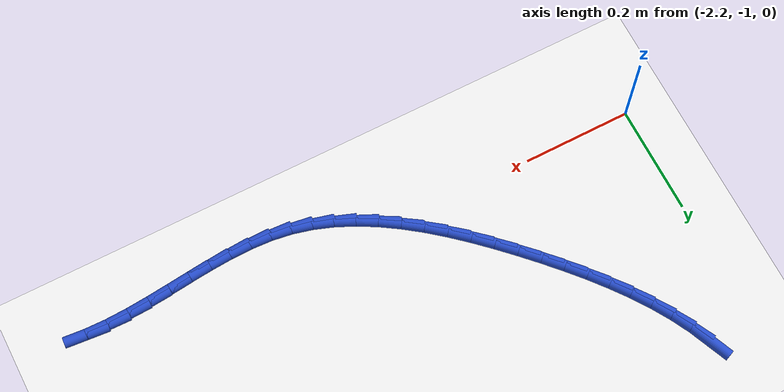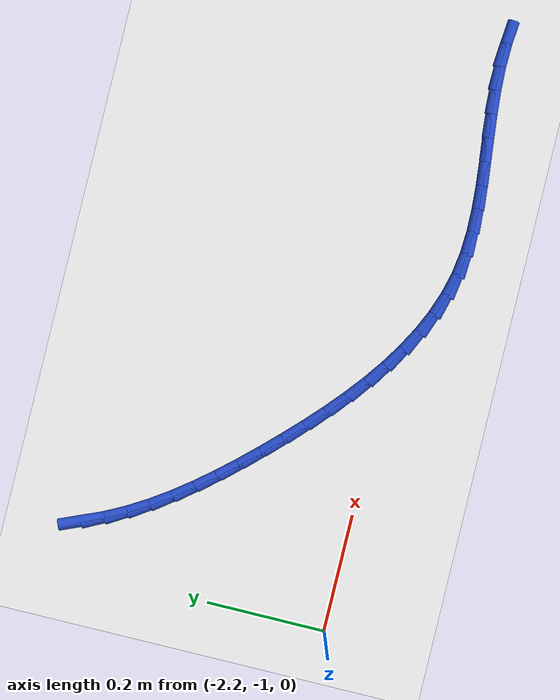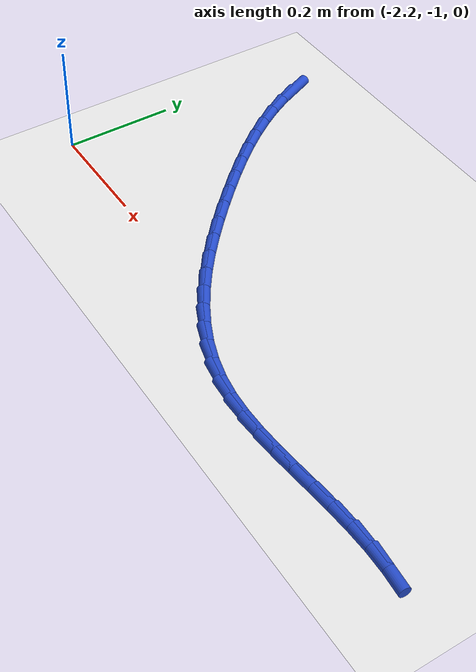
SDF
<sdf version="1.6">
 <world name="default">
  <model name="ground_plane">
   <static>1</static>
   <link name="link">
    <collision name="collision">
     <geometry><plane><normal>0 0 1</normal><size>100 100</size></plane></geometry>
     <surface><friction><ode><mu>100</mu><mu2>50</mu2></ode></friction></surface>
    </collision>
    <visual name="visual">
     <cast_shadows>0</cast_shadows>
     <geometry><plane><normal>0 0 1</normal><size>100 100</size></plane></geometry>
     <material>
      <script><uri>file://media/materials/scripts/gazebo.material</uri><name>Gazebo/WhiteGlow</name></script>
     </material>
    </visual>
   </link>
  </model>
  <model name="line">
   <link name="link_104">
    <pose>-2.114832103256443 -0.5647005654742792 0.01 0 1.57 -1.1683854319441171</pose>
    <collision name="collision">
     <geometry><cylinder><radius>0.01</radius><length>0.08</length></cylinder></geometry>
    </collision>
    <visual name="visual">
     <material>
      <script><name>Gazebo/Blue</name><uri>file://media/materials/scripts/gazebo.material</uri></script>
     </material>
     <geometry><cylinder><radius>0.01</radius><length>0.08</length></cylinder></geometry>
    </visual>
   </link>
   <link name="link_105">
    <pose>-2.0999432105239815 -0.5996807447979458 0.01 0 1.57 -1.093050343745922</pose>
    <collision name="collision">
     <geometry><cylinder><radius>0.01</radius><length>0.08</length></cylinder></geometry>
    </collision>
    <visual name="visual">
     <material>
      <script><name>Gazebo/Blue</name><uri>file://media/materials/scripts/gazebo.material</uri></script>
     </material>
     <geometry><cylinder><radius>0.01</radius><length>0.08</length></cylinder></geometry>
    </visual>
   </link>
   <link name="link_106">
    <pose>-2.082138962742189 -0.6340685249625383 0.01 0 1.57 -1.0276154406287026</pose>
    <collision name="collision">
     <geometry><cylinder><radius>0.01</radius><length>0.08</length></cylinder></geometry>
    </collision>
    <visual name="visual">
     <material>
      <script><name>Gazebo/Blue</name><uri>file://media/materials/scripts/gazebo.material</uri></script>
     </material>
     <geometry><cylinder><radius>0.01</radius><length>0.08</length></cylinder></geometry>
    </visual>
   </link>
   <link name="link_107">
    <pose>-2.061730243589506 -0.6678711299347864 0.01 0 1.57 -0.9713685978101169</pose>
    <collision name="collision">
     <geometry><cylinder><radius>0.01</radius><length>0.08</length></cylinder></geometry>
    </collision>
    <visual name="visual">
     <material>
      <script><name>Gazebo/Blue</name><uri>file://media/materials/scripts/gazebo.material</uri></script>
     </material>
     <geometry><cylinder><radius>0.01</radius><length>0.08</length></cylinder></geometry>
    </visual>
   </link>
   <link name="link_108">
    <pose>-2.039027936744374 -0.70109578368142 0.01 0 1.57 -0.9234927192764404</pose>
    <collision name="collision">
     <geometry><cylinder><radius>0.01</radius><length>0.08</length></cylinder></geometry>
    </collision>
    <visual name="visual">
     <material>
      <script><name>Gazebo/Blue</name><uri>file://media/materials/scripts/gazebo.material</uri></script>
     </material>
     <geometry><cylinder><radius>0.01</radius><length>0.08</length></cylinder></geometry>
    </visual>
   </link>
   <link name="link_109">
    <pose>-2.0143429258852343 -0.7337497101691696 0.01 0 1.57 -0.8831838583922672</pose>
    <collision name="collision">
     <geometry><cylinder><radius>0.01</radius><length>0.08</length></cylinder></geometry>
    </collision>
    <visual name="visual">
     <material>
      <script><name>Gazebo/Blue</name><uri>file://media/materials/scripts/gazebo.material</uri></script>
     </material>
     <geometry><cylinder><radius>0.01</radius><length>0.08</length></cylinder></geometry>
    </visual>
   </link>
   <link name="link_110">
    <pose>-1.987986094690529 -0.7658401333647638 0.01 0 1.57 -0.8497186471484238</pose>
    <collision name="collision">
     <geometry><cylinder><radius>0.01</radius><length>0.08</length></cylinder></geometry>
    </collision>
    <visual name="visual">
     <material>
      <script><name>Gazebo/Blue</name><uri>file://media/materials/scripts/gazebo.material</uri></script>
     </material>
     <geometry><cylinder><radius>0.01</radius><length>0.08</length></cylinder></geometry>
    </visual>
   </link>
   <link name="link_111">
    <pose>-1.9602683268386982 -0.7973742772349329 0.01 0 1.57 -0.8224884215368236</pose>
    <collision name="collision">
     <geometry><cylinder><radius>0.01</radius><length>0.08</length></cylinder></geometry>
    </collision>
    <visual name="visual">
     <material>
      <script><name>Gazebo/Blue</name><uri>file://media/materials/scripts/gazebo.material</uri></script>
     </material>
     <geometry><cylinder><radius>0.01</radius><length>0.08</length></cylinder></geometry>
    </visual>
   </link>
   <link name="link_112">
    <pose>-1.931500506008184 -0.8283593657464069 0.01 0 1.57 -0.8009283346623199</pose>
    <collision name="collision">
     <geometry><cylinder><radius>0.01</radius><length>0.08</length></cylinder></geometry>
    </collision>
    <visual name="visual">
     <material>
      <script><name>Gazebo/Blue</name><uri>file://media/materials/scripts/gazebo.material</uri></script>
     </material>
     <geometry><cylinder><radius>0.01</radius><length>0.08</length></cylinder></geometry>
    </visual>
   </link>
   <link name="link_113">
    <pose>-1.9019908758463255 -0.8588001103543619 0.01 0 1.57 -0.7803278999452763</pose>
    <collision name="collision">
     <geometry><cylinder><radius>0.01</radius><length>0.08</length></cylinder></geometry>
    </collision>
    <visual name="visual">
     <material>
      <script><name>Gazebo/Blue</name><uri>file://media/materials/scripts/gazebo.material</uri></script>
     </material>
     <geometry><cylinder><radius>0.01</radius><length>0.08</length></cylinder></geometry>
    </visual>
   </link>
   <link name="link_114">
    <pose>-1.8719137565352213 -0.8885737678587678 0.01 0 1.57 -0.7540231281532149</pose>
    <collision name="collision">
     <geometry><cylinder><radius>0.01</radius><length>0.08</length></cylinder></geometry>
    </collision>
    <visual name="visual">
     <material>
      <script><name>Gazebo/Blue</name><uri>file://media/materials/scripts/gazebo.material</uri></script>
     </material>
     <geometry><cylinder><radius>0.01</radius><length>0.08</length></cylinder></geometry>
    </visual>
   </link>
   <link name="link_115">
    <pose>-1.841248857562832 -0.9173723845076189 0.01 0 1.57 -0.7210666873207242</pose>
    <collision name="collision">
     <geometry><cylinder><radius>0.01</radius><length>0.08</length></cylinder></geometry>
    </collision>
    <visual name="visual">
     <material>
      <script><name>Gazebo/Blue</name><uri>file://media/materials/scripts/gazebo.material</uri></script>
     </material>
     <geometry><cylinder><radius>0.01</radius><length>0.08</length></cylinder></geometry>
    </visual>
   </link>
   <link name="link_116">
    <pose>-1.8099605769800946 -0.9448734346893473 0.01 0 1.57 -0.6808782692776548</pose>
    <collision name="collision">
     <geometry><cylinder><radius>0.01</radius><length>0.08</length></cylinder></geometry>
    </collision>
    <visual name="visual">
     <material>
      <script><name>Gazebo/Blue</name><uri>file://media/materials/scripts/gazebo.material</uri></script>
     </material>
     <geometry><cylinder><radius>0.01</radius><length>0.08</length></cylinder></geometry>
    </visual>
   </link>
   <link name="link_117">
    <pose>-1.7780133128379403 -0.9707543927923866 0.01 0 1.57 -0.6327684379569362</pose>
    <collision name="collision">
     <geometry><cylinder><radius>0.01</radius><length>0.08</length></cylinder></geometry>
    </collision>
    <visual name="visual">
     <material>
      <script><name>Gazebo/Blue</name><uri>file://media/materials/scripts/gazebo.material</uri></script>
     </material>
     <geometry><cylinder><radius>0.01</radius><length>0.08</length></cylinder></geometry>
    </visual>
   </link>
   <link name="link_118">
    <pose>-1.7453714631873047 -0.9946927332051708 0.01 0 1.57 -0.5759827393561124</pose>
    <collision name="collision">
     <geometry><cylinder><radius>0.01</radius><length>0.08</length></cylinder></geometry>
    </collision>
    <visual name="visual">
     <material>
      <script><name>Gazebo/Blue</name><uri>file://media/materials/scripts/gazebo.material</uri></script>
     </material>
     <geometry><cylinder><radius>0.01</radius><length>0.08</length></cylinder></geometry>
    </visual>
   </link>
   <link name="link_119">
    <pose>-1.7119994260791198 -1.016365930316133 0.01 0 1.57 -0.5097821504637767</pose>
    <collision name="collision">
     <geometry><cylinder><radius>0.01</radius><length>0.08</length></cylinder></geometry>
    </collision>
    <visual name="visual">
     <material>
      <script><name>Gazebo/Blue</name><uri>file://media/materials/scripts/gazebo.material</uri></script>
     </material>
     <geometry><cylinder><radius>0.01</radius><length>0.08</length></cylinder></geometry>
    </visual>
   </link>
   <link name="link_120">
    <pose>-1.6778615995643196 -1.0354514585137071 0.01 0 1.57 -0.4335760592934725</pose>
    <collision name="collision">
     <geometry><cylinder><radius>0.01</radius><length>0.08</length></cylinder></geometry>
    </collision>
    <visual name="visual">
     <material>
      <script><name>Gazebo/Blue</name><uri>file://media/materials/scripts/gazebo.material</uri></script>
     </material>
     <geometry><cylinder><radius>0.01</radius><length>0.08</length></cylinder></geometry>
    </visual>
   </link>
   <link name="link_121">
    <pose>-1.6429223816938388 -1.0516267921863258 0.01 0 1.57 -0.3471180042016823</pose>
    <collision name="collision">
     <geometry><cylinder><radius>0.01</radius><length>0.08</length></cylinder></geometry>
    </collision>
    <visual name="visual">
     <material>
      <script><name>Gazebo/Blue</name><uri>file://media/materials/scripts/gazebo.material</uri></script>
     </material>
     <geometry><cylinder><radius>0.01</radius><length>0.08</length></cylinder></geometry>
    </visual>
   </link>
   <link name="link_122">
    <pose>-1.6071461705186114 -1.0645694057224233 0.01 0 1.57 -0.2507527350497579</pose>
    <collision name="collision">
     <geometry><cylinder><radius>0.01</radius><length>0.08</length></cylinder></geometry>
    </collision>
    <visual name="visual">
     <material>
      <script><name>Gazebo/Blue</name><uri>file://media/materials/scripts/gazebo.material</uri></script>
     </material>
     <geometry><cylinder><radius>0.01</radius><length>0.08</length></cylinder></geometry>
    </visual>
   </link>
   <link name="link_123">
    <pose>-1.5704973640895696 -1.0739567735104323 0.01 0 1.57 -0.14706833978597836</pose>
    <collision name="collision">
     <geometry><cylinder><radius>0.01</radius><length>0.08</length></cylinder></geometry>
    </collision>
    <visual name="visual">
     <material>
      <script><name>Gazebo/Blue</name><uri>file://media/materials/scripts/gazebo.material</uri></script>
     </material>
     <geometry><cylinder><radius>0.01</radius><length>0.08</length></cylinder></geometry>
    </visual>
   </link>
   <link name="link_124">
    <pose>-1.5329499223959695 -1.079518973151639 0.01 0 1.57 -0.054123760241607435</pose>
    <collision name="collision">
     <geometry><cylinder><radius>0.01</radius><length>0.08</length></cylinder></geometry>
    </collision>
    <visual name="visual">
     <material>
      <script><name>Gazebo/Blue</name><uri>file://media/materials/scripts/gazebo.material</uri></script>
     </material>
     <geometry><cylinder><radius>0.01</radius><length>0.08</length></cylinder></geometry>
    </visual>
   </link>
   <link name="link_125">
    <pose>-1.4945888995399288 -1.0815972457027498 0.01 0 1.57 0.01717709180044949</pose>
    <collision name="collision">
     <geometry><cylinder><radius>0.01</radius><length>0.08</length></cylinder></geometry>
    </collision>
    <visual name="visual">
     <material>
      <script><name>Gazebo/Blue</name><uri>file://media/materials/scripts/gazebo.material</uri></script>
     </material>
     <geometry><cylinder><radius>0.01</radius><length>0.08</length></cylinder></geometry>
    </visual>
   </link>
   <link name="link_126">
    <pose>-1.455570993141914 -1.080926965618792 0.01 0 1.57 0.06763722626959455</pose>
    <collision name="collision">
     <geometry><cylinder><radius>0.01</radius><length>0.08</length></cylinder></geometry>
    </collision>
    <visual name="visual">
     <material>
      <script><name>Gazebo/Blue</name><uri>file://media/materials/scripts/gazebo.material</uri></script>
     </material>
     <geometry><cylinder><radius>0.01</radius><length>0.08</length></cylinder></geometry>
    </visual>
   </link>
   <link name="link_127">
    <pose>-1.4160540935293173 -1.0782500688085408 0.01 0 1.57 0.09857001321003085</pose>
    <collision name="collision">
     <geometry><cylinder><radius>0.01</radius><length>0.08</length></cylinder></geometry>
    </collision>
    <visual name="visual">
     <material>
      <script><name>Gazebo/Blue</name><uri>file://media/materials/scripts/gazebo.material</uri></script>
     </material>
     <geometry><cylinder><radius>0.01</radius><length>0.08</length></cylinder></geometry>
    </visual>
   </link>
   <link name="link_128">
    <pose>-1.3761960910295272 -1.074308491180769 0.01 0 1.57 0.11103461825785486</pose>
    <collision name="collision">
     <geometry><cylinder><radius>0.01</radius><length>0.08</length></cylinder></geometry>
    </collision>
    <visual name="visual">
     <material>
      <script><name>Gazebo/Blue</name><uri>file://media/materials/scripts/gazebo.material</uri></script>
     </material>
     <geometry><cylinder><radius>0.01</radius><length>0.08</length></cylinder></geometry>
    </visual>
   </link>
   <link name="link_129">
    <pose>-1.3361548759699347 -1.0698441686442521 0.01 0 1.57 0.10555822678696064</pose>
    <collision name="collision">
     <geometry><cylinder><radius>0.01</radius><length>0.08</length></cylinder></geometry>
    </collision>
    <visual name="visual">
     <material>
      <script><name>Gazebo/Blue</name><uri>file://media/materials/scripts/gazebo.material</uri></script>
     </material>
     <geometry><cylinder><radius>0.01</radius><length>0.08</length></cylinder></geometry>
    </visual>
   </link>
   <link name="link_130">
    <pose>-1.2960883386779294 -1.065599037107764 0.01 0 1.57 0.08205123691571815</pose>
    <collision name="collision">
     <geometry><cylinder><radius>0.01</radius><length>0.08</length></cylinder></geometry>
    </collision>
    <visual name="visual">
     <material>
      <script><name>Gazebo/Blue</name><uri>file://media/materials/scripts/gazebo.material</uri></script>
     </material>
     <geometry><cylinder><radius>0.01</radius><length>0.08</length></cylinder></geometry>
    </visual>
   </link>
   <link name="link_131">
    <pose>-1.2561543694808994 -1.062315032480078 0.01 0 1.57 0.03985783560454661</pose>
    <collision name="collision">
     <geometry><cylinder><radius>0.01</radius><length>0.08</length></cylinder></geometry>
    </collision>
    <visual name="visual">
     <material>
      <script><name>Gazebo/Blue</name><uri>file://media/materials/scripts/gazebo.material</uri></script>
     </material>
     <geometry><cylinder><radius>0.01</radius><length>0.08</length></cylinder></geometry>
    </visual>
   </link>
   <link name="link_132">
    <pose>-1.2165108587062374 -1.0607340906699692 0.01 0 1.57 -0.02156458180418635</pose>
    <collision name="collision">
     <geometry><cylinder><radius>0.01</radius><length>0.08</length></cylinder></geometry>
    </collision>
    <visual name="visual">
     <material>
      <script><name>Gazebo/Blue</name><uri>file://media/materials/scripts/gazebo.material</uri></script>
     </material>
     <geometry><cylinder><radius>0.01</radius><length>0.08</length></cylinder></geometry>
    </visual>
   </link>
   <link name="link_133">
    <pose>-1.1773103391556876 -1.0615795645418866 0.01 0 1.57 -0.08721695797970214</pose>
    <collision name="collision">
     <geometry><cylinder><radius>0.01</radius><length>0.08</length></cylinder></geometry>
    </collision>
    <visual name="visual">
     <material>
      <script><name>Gazebo/Blue</name><uri>file://media/materials/scripts/gazebo.material</uri></script>
     </material>
     <geometry><cylinder><radius>0.01</radius><length>0.08</length></cylinder></geometry>
    </visual>
   </link>
  </model>
 </world>
</sdf>
